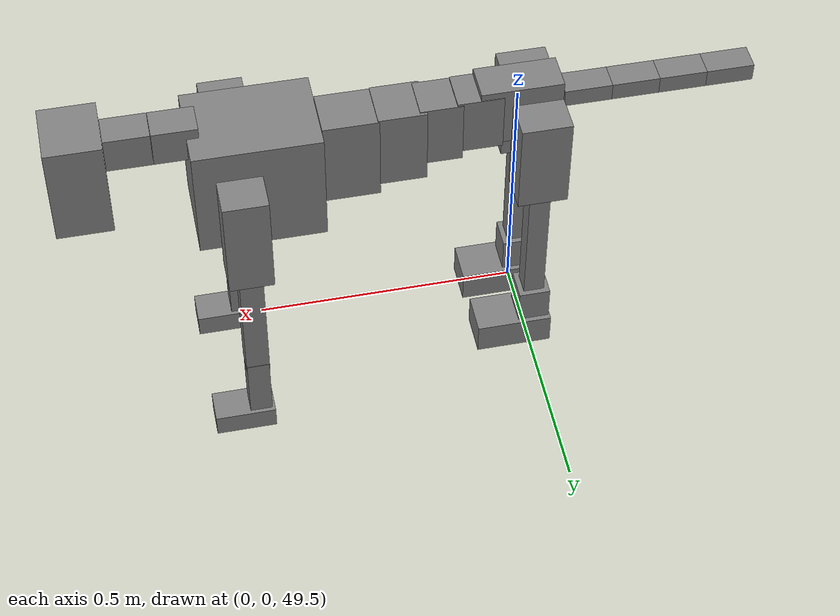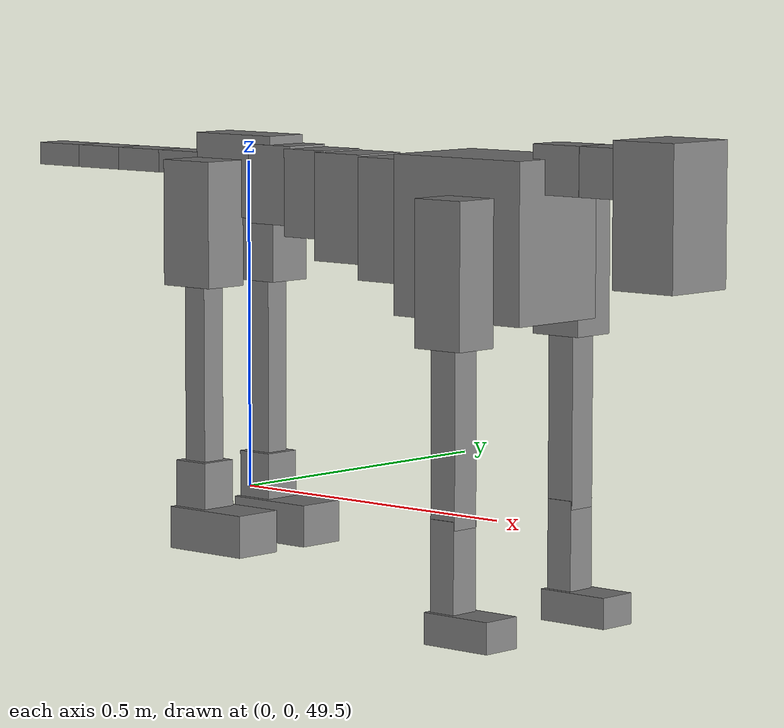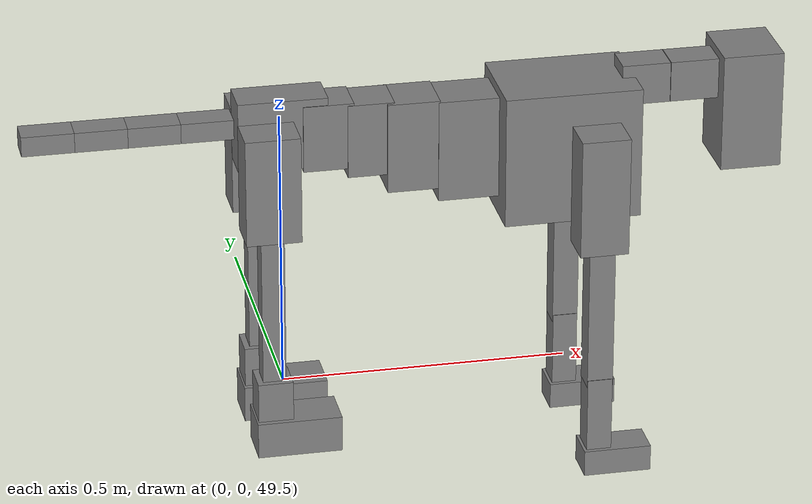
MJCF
<mujoco model="dog">

    <default>
        <joint armature="0.02" stiffness="1" damping="0.2" limited="true"/>
        <geom condim="3" friction="1 0.05 0.05" margin="0.01"/>
        <motor ctrllimited="true" ctrlrange="-1.0 1.0" forcelimited="true" gear="50"/>
    </default>

    <compiler inertiafromgeom="true" angle="radian"/>

    <option timestep="0.016" iterations="50" tolerance="1e-10" solver="Newton" jacobian="dense" cone="pyramidal"/>

    <size nconmax="20000" njmax="60000" nstack="5000000"/>
    <visual>
        <map force="0.1" zfar="30"/>
        <rgba haze="0.15 0.25 0.35 1"/>
        <quality shadowsize="2048"/>
        <global offwidth="800" offheight="800"/>
    </visual>

    <asset>
        <texture type="skybox" builtin="gradient" rgb1="0.3 0.5 0.7" rgb2="0 0 0" width="512" height="512"/>
        <texture name="texplane" type="2d" builtin="checker" rgb1=".2 .3 .4" rgb2=".1 0.15 0.2" width="512" height="512"
                 mark="cross" markrgb=".8 .8 .8"/>
        <texture name="texgeom" type="cube" builtin="flat" mark="cross" width="127" height="1278" rgb1="0.8 0.6 0.4"
                 rgb2="0.8 0.6 0.4" markrgb="1 1 1" random="0.01"/>

        <material name="matplane" reflectance="0.3" texture="texplane" texrepeat="1 1" texuniform="true"/>
        <material name="matgeom" texture="texgeom" texuniform="true" rgba="0.8 0.6 .4 1"/>
    </asset>

    <worldbody>
        <geom name="floor" pos="0 0 0" size="0 0 .25" type="plane" material="matplane" condim="3"/>

        <light directional="false" diffuse=".2 .2 .2" specular="0 0 0" pos="0 0 5" dir="0 0 -1" castshadow="false"/>
        <light mode="targetbodycom" target="torso" directional="false" diffuse=".8 .8 .8" specular="0.3 0.3 0.3"
               pos="0 0 4.0" dir="0 0 -1"/>

        <body name="root" pos="0 0 50">
            <freejoint name="root_1"/>
            <geom type="box" pos="0 0 -0.02" size="0.0774  0.0358  0.063" density="2030"/>

            <body name="spine1" pos="0.054 0 0">
                <joint name="spine1_y" axis="0 1 0" range="0 0.7" limited="true"/>
                <geom type="box" pos="0.02375 0 -0.03" size="0.04375  0.0375  0.05985" density="2030"/>

                <body name="spine2" pos="0.0612 0 0">
                    <joint name="spine2_y" axis="0 1 0" range="-0.15 0.15" limited="true"/>
                    <geom type="box" pos="0.03555  0  -0.04" size="0.04055  0.039  0.06615" density="2030"/>

                    <body name="spine3" pos="0.0730 0 0">
                        <joint name="spine3_y" axis="0 1 0" range="-0.15 0.15" limited="true"/>
                        <geom type="box" pos="0.03555  0  -0.057" size="0.04555  0.0445  0.081" density="2030"/>

                        <body name="spine4" pos="0.0780 0 0">
                            <joint name="spine4_y" axis="0 1 0" range="-0.15 0.15" limited="true"/>
                            <geom type="box" pos="0.05265  0  -0.07" size="0.05265  0.045  0.09135" density="2030"/>

                            <body name="torso" pos="0.1082 0 0">
                                <joint name="torso_y" axis="0 1 0" range="-0.15 0.15" limited="true"/>
                                <geom type="box" pos="0.11925  0  -0.085" size="0.11925  0.085  0.11745"
                                      density="2030"/>

                                <body name="neck1" pos="0.2160  0   0.0180">
                                    <joint name="neck1_y" axis="0 1 0" range="-1.2  -1" limited="true"/>
                                    <geom type="box" pos="0.0423  0  0" size="0.0423  0.03  0.036" density="2325"/>

                                    <body name="neck2" pos="0.0853  0  0">
                                        <joint name="neck2_y" axis="0 1 0" range="0.1  0" limited="true"/>
                                        <geom type="box" pos="0.0423  0  0" size="0.0423  0.03  0.036" density="2325"/>

                                        <body name="head" pos="0.0853  0  0">
                                            <joint name="head_y" axis="0 1 0" range="-0.3  -0.2" limited="true"/>
                                            <geom type="box" pos="0.0531  0  -0.055" size="0.0531  0.06  0.1044"
                                                  density="4030"/>

                                        </body>
                                    </body>
                                </body>

                                <body name="front_shoulder" pos="0.156  0   -0.0480">
                                    <joint name="front_shoulder_y" axis="0 1 0" range="-1 1.5" limited="true"/>
                                    <geom type="box" pos="0 0.13 -0.0799" size="0.0423  0.0362  0.1066" density="1158"/>
                                    <geom type="box" pos="0 -0.13 -0.0799" size="0.0423  0.0362  0.1066"
                                          density="1158"/>

                                    <body name="front_elbow" pos="0  0  -0.1598">
                                        <joint name="front_elbow_y" axis="0 1 0" range="-2 0" limited="true"/>
                                        <geom type="box" pos="0 0.13 -0.1419" size="0.0226  0.0231  0.1419"
                                              density="1081"/>
                                        <geom type="box" pos="0 -0.13 -0.1419" size="0.0226  0.0231  0.1419"
                                              density="1081"/>

                                        <body name="front_wrist" pos="0  0  -0.2838">
                                            <joint name="front_wrist_y" axis="0 1 0" range="-0.2 0" limited="true"/>
                                            <geom type="box" pos="0 0.13 -0.0682" size="0.0218  0.0243  0.0813"
                                                  density="1664"/>
                                            <geom type="box" pos="0 -0.13 -0.0682" size="0.0218  0.0243  0.0813"
                                                  density="1664"/>

                                            <body name="front_finger_end" pos="0  0  -0.1364">
                                                <joint name="front_finger_y" axis="0 1 0" range="-0.4 1"
                                                       limited="true"/>
                                                <geom type="box" pos="0.0323  0.13  -0.0082"
                                                      size="0.0592  0.0323  0.0232" density="1515"/>
                                                <geom type="box" pos="0.0323  -0.13  -0.0082"
                                                      size="0.0592  0.0323  0.0232" density="1515"/>

                                            </body>

                                        </body>
                                    </body>
                                </body>

                            </body>
                        </body>
                    </body>
                </body>
            </body>

            <body name="back_hip" pos="-0.03 0 -0.018">
                <joint name="back_hip_y" axis="0 1 0" range="-1.5 0.3" limited="true"/>
                <geom type="box" pos="0 0.07 -0.0730" size="0.0476  0.0373  0.0958" density="1154"/>
                <geom type="box" pos="0 -0.07 -0.0730" size="0.0476  0.0373  0.0958" density="1154"/>

                <body name="back_knee" pos="0  0  -0.1459">
                    <joint name="back_knee_y" axis="0 1 0" range="0 2.8" limited="true"/>
                    <geom type="box" pos="0 0.07 -0.1513" size="0.0202  0.0199  0.1668" density="1227"/>
                    <geom type="box" pos="0 -0.07 -0.1513" size="0.0202  0.0199  0.1668" density="1227"/>

                    <body name="back_ankle" pos="0  0  -0.3026">
                        <joint name="back_ankle_y" axis="0 1 0" range="-2.2 0" limited="true"/>
                        <geom type="box" pos="0 0.07 -0.0375" size="0.0305  0.0305  0.0487" density="1284"/>
                        <geom type="box" pos="0 -0.07 -0.0375" size="0.0305  0.0305  0.0487" density="1284"/>

                        <body name="back_toe_end" pos="0  0  -0.0749">
                            <joint name="back_toe_y" axis="0 1 0" range="-0.4 1" limited="true"/>
                            <geom type="box" pos="0.0402  0.07  -0.0171" size="0.0737  0.0402  0.0321" density="1515"/>
                            <geom type="box" pos="0.0402  -0.07  -0.0171" size="0.0737  0.0402  0.0321" density="1515"/>

                        </body>
                    </body>
                </body>
            </body>

            <body name="tail1" pos="-0.074 0 -0.006">
                <joint name="tail1_y" axis="0 1 0" range="-0.2 0.2" limited="true"/>
                <geom type="box" pos="-0.0536  0  0" size="0.045  0.025  0.0175" density="1587"/>

                <body name="tail2" pos="-0.09 0 0">
                    <joint name="tail2_y" axis="0 1 0" range="-0.2 0.2" limited="true"/>
                    <geom type="box" pos="-0.0536  0  0" size="0.045  0.025  0.0175" density="1587"/>

                    <body name="tail3" pos="-0.09 0 0">
                        <joint name="tail3_y" axis="0 1 0" range="-0.2 0.2" limited="true"/>
                        <geom type="box" pos="-0.0536  0  0" size="0.045  0.025  0.0175" density="1587"/>

                        <body name="tail4" pos="-0.09 0 0">
                            <joint name="tail4_y" axis="0 1 0" range="-0.2 0.2" limited="true"/>
                            <geom type="box" pos="-0.0536  0  0" size="0.045  0.025  0.0175" density="1587"/>

                        </body>
                    </body>
                </body>
            </body>
        </body>
    </worldbody>

    <actuator>
        <motor joint="spine1_y" forcerange="-150 150     "/>
        <motor joint="spine2_y" forcerange="-150 150     "/>
        <motor joint="spine3_y" forcerange="-150 150     "/>
        <motor joint="spine4_y" forcerange="-150 150     "/>
        <motor joint="torso_y" forcerange="-150 150     "/>
        <motor joint="neck1_y" forcerange="-100 100       "/>
        <motor joint="neck2_y" forcerange="-100 100       "/>
        <motor joint="head_y" forcerange="-150 150       "/>
        <motor joint="front_shoulder_y" forcerange="-185.46 155.59"/>
        <motor joint="front_elbow_y" forcerange="-147.88 119.87"/>
        <motor joint="front_wrist_y" forcerange="-85.22 108.82"/>
        <motor joint="front_finger_y" forcerange="-78.49 53.67"/>
        <motor joint="back_hip_y" forcerange="-369.94 327.60"/>
        <motor joint="back_knee_y" forcerange="-262.89 227.28"/>
        <motor joint="back_angle_y" forcerange="-200.04 187.96"/>
        <motor joint="back_toe_y" forcerange="-108.93 132.75"/>
        <motor joint="tail1_y" forcerange="-50 50     "/>
        <motor joint="tail2_y" forcerange="-50 50     "/>
        <motor joint="tail3_y" forcerange="-50 50     "/>
        <motor joint="tail4_y" forcerange="-50 50     "/>
    </actuator>
</mujoco>
